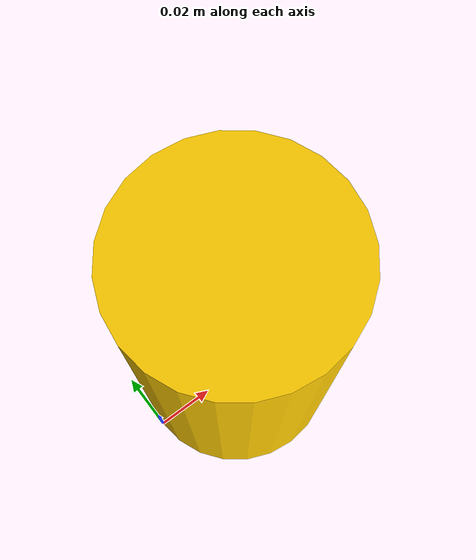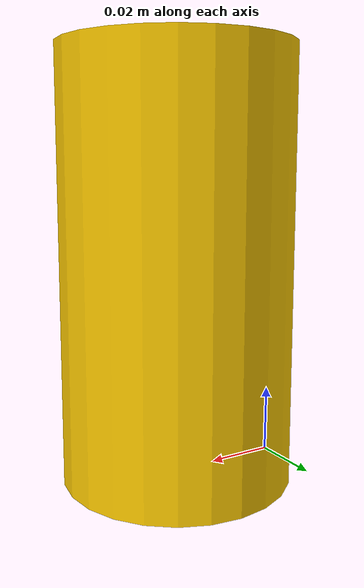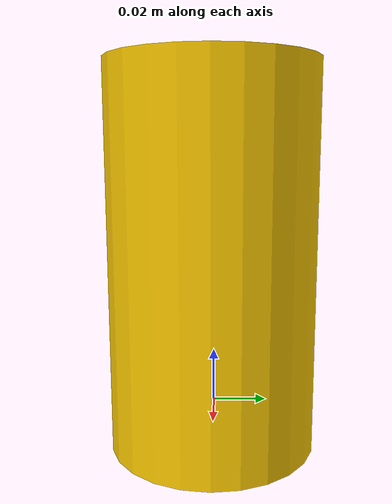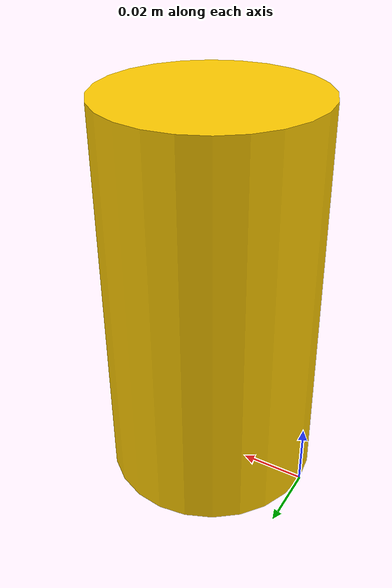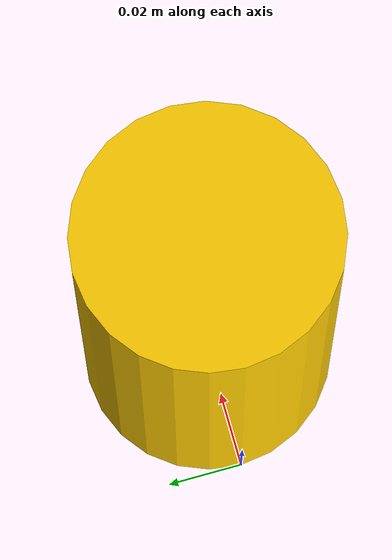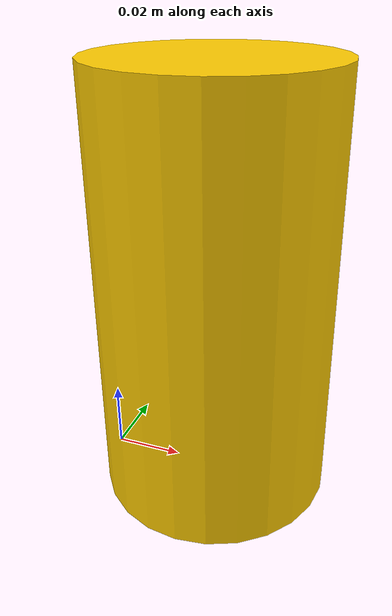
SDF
<?xml version='1.0'?>

<sdf version="1.5">
<model name="yellow_can">
  <pose>0 0 0 0 0 0</pose>

      <link name="1st_can_lower">
        <pose>0.033 0 0.061 0 0 0</pose>

        <collision name="collision">
          <geometry>
            <cylinder>
              <radius>0.033</radius>
              <length>0.122</length>
            </cylinder>
          </geometry>
        </collision>

        <visual name="visual">
          <geometry>
            <cylinder>
              <radius>0.033</radius>
              <length>0.122</length>
            </cylinder>
          </geometry>
          <material>
            <ambient>0.8 0.6 0 1</ambient>
            <diffuse>1 0.8 0 1</diffuse>
            <specular>0.5 0.5 0.5 0.8</specular>
            <emissive>0.1 0.1 0.1 1</emissive>
          </material>
        </visual>

      </link>

  </model>
</sdf>
